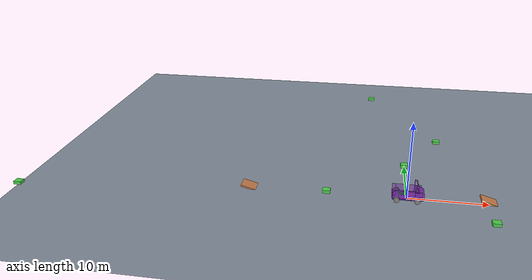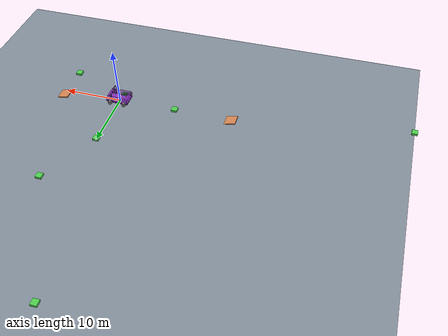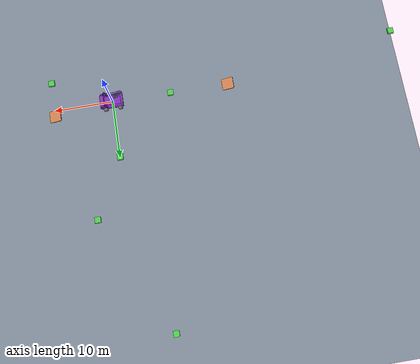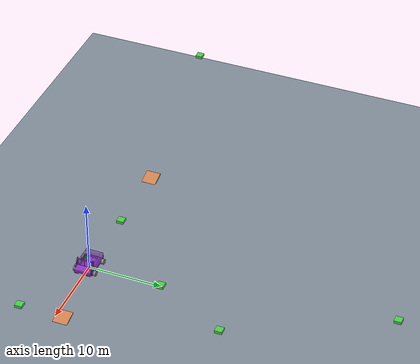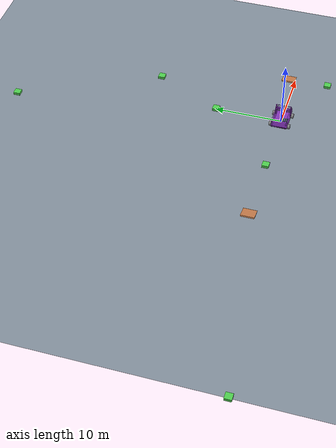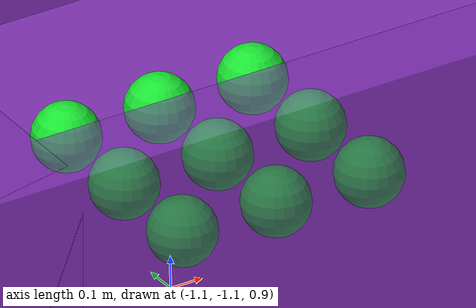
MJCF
<!--
목적 : (차량 모델 분리) 부분 트럭 모델
작성자 : 김준호
최초 작성일자 : 2025-05-09
수정자 : 김준호
최종 수정일자 : 2025-05-09
-->
<mujoco>
  <compiler inertiafromgeom="true"/>
  <option timestep="0.001" gravity="0 0 -9.81"/>

  <asset>
    <texture name="grid" type="2d" builtin="checker"
             rgb1="0.2 0.3 0.4" rgb2="0.8 0.8 0.8"
             width="512" height="512"/>
    <material name="grid_mat" texture="grid" texrepeat="5 5"
              specular="0.3" shininess="0.3"/>
    <texture name="wheel_pattern" type="2d" builtin="checker"
             rgb1="1 1 1" rgb2="0 0 0"
             width="64" height="64"/>
    <material name="wheel_mat" texture="wheel_pattern" texrepeat="8 1"
              specular="0.5" shininess="0.5"/>
    <mesh name="VAN_Front_mesh" file="VAN_Front.stl" scale="0.025 0.025 0.025" maxhullvert="100"/>
  </asset>

  <worldbody>
    <light directional="true" diffuse=".8 .8 .8" specular="0.2 0.2 0.2" pos="0 0 4" dir="0 0 -1"/>

    <!-- 바닥: 충돌용 평면 -->
    <geom name="floor" type="plane" size="50 50 0.1"
          material="grid_mat"
          friction="1 0.5 0.5"
          contype="1" conaffinity="1" condim="3"/>

    <!-- 차량 본체 + 바퀴 정의 -->
    <body name="chassis" pos="0 0 0.4">
      <joint name="root" type="free"/>
      <geom name="chassis" type="box" size="1.8 1.2 0.1" rgba="0.5 0.2 0.7 1" mass="50" friction="1 0.5 0.5"/>   1.875 1.25 0.375
      <geom name="wall_1" type="box" size="1.8 0.12 0.5" pos="0 1.08 0.5" rgba="0.5 0.2 0.7 0.5" mass="10" friction="1 0.5 0.5"/>
      <geom name="wall_2" type="box" size="1.8 0.12 .5" pos="0 -1.08 0.5" rgba="0.5 0.2 0.7 0.5" mass="10" friction="1 0.5 0.5"/>
      <geom name="wall_3" type="box" size="0.18 1.2 .5" pos="-1.62 0 0.5" rgba="0.5 0.2 0.7 0.5" mass="1" friction="1 0.5 0.5"/>
      <geom name="VAN_Front" type="mesh" mesh="VAN_Front_mesh" pos="1.4 0 0" euler="0 0 -90" rgba="0.5 0.2 0.7 1" mass="10" friction="1 0.5 0.5"/>

      <!-- 앞왼쪽 바퀴 -->
      <body name="front_left_wheel" pos="1.25 1.4 0">
        <joint name="fl_steer" type="hinge" axis="0 0 1"
               range="-0.6 0.6" damping="0" stiffness="0"/>
        <joint name="fl_wheel" type="hinge" axis="0 1 0" damping="0"/>
        <geom name="fl_geom" type="cylinder" size="0.35 0.175"
              euler="90 0 0" material="wheel_mat"
              mass="5.0" friction="0 0 0"
              solimp="0.9 0.95 0.001 0.1 2"
              contype="1" conaffinity="1" condim="3"
              margin="0.001" gap="0.0001"/>
        <site name="fl_site" pos="0 0 -0.7" size="0.01" group="3"/>
      </body>

      <!-- 앞오른쪽 바퀴 -->
      <body name="front_right_wheel" pos="1.25 -1.4 0">
        <joint name="fr_steer" type="hinge" axis="0 0 1"
               range="-0.6 0.6" damping="0" stiffness="0"/>
        <joint name="fr_wheel" type="hinge" axis="0 1 0" damping="0"/>
        <geom name="fr_geom" type="cylinder" size="0.35 0.175"
              euler="90 0 0" material="wheel_mat"
              mass="5.0" friction="0 0 0"
              solimp="0.9 0.95 0.001 0.1 2"
              contype="1" conaffinity="1" condim="3"
              margin="0.001" gap="0.0001"/>
        <site name="fr_site" pos="0 0 -0.7" size="0.01" group="3"/>
      </body>

      <!-- 뒤왼쪽 바퀴 -->
      <body name="rear_left_wheel" pos="-1.25 1.4 0">
        <joint name="rl_wheel" type="hinge" axis="0 1 0" damping="0"/>
        <geom name="rl_geom" type="cylinder" size="0.35 0.175"
              euler="90 0 0" material="wheel_mat"
              mass="5.0" friction="0 0 0"
              solimp="0.9 0.95 0.001 0.1 2"
              contype="1" conaffinity="1" condim="3"
              margin="0.001" gap="0.0001"/>
        <site name="rl_site" pos="0 0 -0.7" size="0.01" group="3"/>
      </body>

      <!-- 뒤오른쪽 바퀴 -->
      <body name="rear_right_wheel" pos="-1.25 -1.4 0">
        <joint name="rr_wheel" type="hinge" axis="0 1 0" damping="0"/>
        <geom name="rr_geom" type="cylinder" size="0.35 0.175"
              euler="90 0 0" material="wheel_mat"
              mass="5.0" friction="0 0 0"
              solimp="0.9 0.95 0.001 0.1 2"
              contype="1" conaffinity="1" condim="3"
              margin="0.001" gap="0.0001"/>
        <site name="rr_site" pos="0 0 -0.7" size="0.01" group="3"/>
      </body>
    </body>

    <!-- 기존 점프대 및 장애물 -->
    <geom name="jump_ramp1" type="box" pos="-20 0 0.1"
          size="1 1 0.1" euler="0 15 0"
          rgba="0.8 0.5 0.3 1" friction="1 0.5 0.5"
          contype="1" conaffinity="1" condim="3"/>
    <geom name="jump_ramp2" type="box" pos="10 1 0.1"
          size="1 1 0.1" euler="0 15 0"
          rgba="0.8 0.5 0.3 1" friction="1 0.5 0.5"
          contype="1" conaffinity="1" condim="3"/>

    <geom name="obstacle1" type="box" pos="-50 -5 0.2"
          size="0.5 0.5 0.2" rgba="0.3 0.8 0.3 1" friction="1 0.5 0.5"
          contype="1" conaffinity="1" condim="3"/>
    <geom name="obstacle2" type="box" pos="-5 40 0.2"
          size="0.5 0.5 0.2" rgba="0.3 0.8 0.3 1" friction="1 0.5 0.5"
          contype="1" conaffinity="1" condim="3"/>
    <geom name="obstacle3" type="box" pos="0 10 0.2"
          size="0.5 0.5 0.2" rgba="0.3 0.8 0.3 1" friction="1 0.5 0.5"
          contype="1" conaffinity="1" condim="3"/>
    <geom name="obstacle4" type="box" pos="10 -5 0.2"
          size="0.5 0.5 0.2" rgba="0.3 0.8 0.3 1" friction="1 0.5 0.5"
          contype="1" conaffinity="1" condim="3"/>
    <geom name="obstacle5" type="box" pos="5 20 0.2"
          size="0.5 0.5 0.2" rgba="0.3 0.8 0.3 1" friction="1 0.5 0.5"
          contype="1" conaffinity="1" condim="3"/>
    <geom name="obstacle6" type="box" pos="-10 0 0.2"
          size="0.5 0.5 0.2" rgba="0.3 0.8 0.3 1" friction="1 0.5 0.5"
          contype="1" conaffinity="1" condim="3"/>

    <!-- 수화물 공 9개 -->
    <body name="sphere_1" pos="-0.4 -0.4 1">
      <joint name="sphere_rot_1" type="free"/>
      <geom size="0.1 0.1 0.1" type="sphere" rgba="0.1 0.9 0.2 1" mass="0.5" contype="1" conaffinity="1" friction="0.04 0.04 0.04"/>
    </body>
    <body name="sphere_2" pos="-0.7 -0.4 1">
      <joint name="sphere_rot_2" type="free"/>
      <geom size="0.1 0.1 0.1" type="sphere" rgba="0.1 0.9 0.2 1" mass="0.5" contype="1" conaffinity="1" friction="0.04 0.04 0.04"/>
    </body>
    <body name="sphere_3" pos="-1 -0.4 1">
      <joint name="sphere_rot_3" type="free"/>
      <geom size="0.1 0.1 0.1" type="sphere" rgba="0.1 0.9 0.2 1" mass="0.5" contype="1" conaffinity="1" friction="0.04 0.04 0.04"/>
    </body>
    <body name="sphere_4" pos="-0.4 -0.7 1">
      <joint name="sphere_rot_4" type="free"/>
      <geom size="0.1 0.1 0.1" type="sphere" rgba="0.1 0.9 0.2 1" mass="0.5" contype="1" conaffinity="1" friction="0.04 0.04 0.04"/>
    </body>
    <body name="sphere_5" pos="-0.7 -0.7 1">
      <joint name="sphere_rot_5" type="free"/>
      <geom size="0.1 0.1 0.1" type="sphere" rgba="0.1 0.9 0.2 1" mass="0.5" contype="1" conaffinity="1" friction="0.04 0.04 0.04"/>
    </body>
    <body name="sphere_6" pos="-1 -0.7 1">
      <joint name="sphere_rot_6" type="free"/>
      <geom size="0.1 0.1 0.1" type="sphere" rgba="0.1 0.9 0.2 1" mass="0.5" contype="1" conaffinity="1" friction="0.04 0.04 0.04"/>
    </body>
    <body name="sphere_7" pos="-0.4 -1 1">
      <joint name="sphere_rot_7" type="free"/>
      <geom size="0.1 0.1 0.1" type="sphere" rgba="0.1 0.9 0.2 1" mass="0.5" contype="1" conaffinity="1" friction="0.04 0.04 0.04"/>
    </body>
    <body name="sphere_8" pos="-0.7 -1 1">
      <joint name="sphere_rot_8" type="free"/>
      <geom size="0.1 0.1 0.1" type="sphere" rgba="0.1 0.9 0.2 1" mass="0.5" contype="1" conaffinity="1" friction="0.04 0.04 0.04"/>
    </body>
    <body name="sphere_9" pos="-1 -1 1">
      <joint name="sphere_rot_9" type="free"/>
      <geom size="0.1 0.1 0.1" type="sphere" rgba="0.1 0.9 0.2 1" mass="0.5" contype="1" conaffinity="1" friction="0.04 0.04 0.04"/>
    </body>
  </worldbody>

  <!-- 액츄에이터 (바퀴 동력 및 조향) -->
  <actuator>
    <motor name="fl_motor" joint="fl_wheel"      ctrlrange="-2000 2000" gear="1"/>
    <motor name="fr_motor" joint="fr_wheel"      ctrlrange="-2000 2000" gear="1"/>
    <motor name="rl_motor" joint="rl_wheel"      ctrlrange="-2000 2000" gear="1"/>
    <motor name="rr_motor" joint="rr_wheel"      ctrlrange="-2000 2000" gear="1"/>
    <motor name="fl_steer_motor" joint="fl_steer" ctrlrange="-200 200"   gear="10"/>
    <motor name="fr_steer_motor" joint="fr_steer" ctrlrange="-200 200"   gear="10"/>
  </actuator>

  <!-- 힘 측정 센서-->
  <sensor>
    <force name="fl_force" site="fl_site"/>
    <force name="fr_force" site="fr_site"/>
    <force name="rl_force" site="rl_site"/>
    <force name="rr_force" site="rr_site"/>
  </sensor>
</mujoco>
